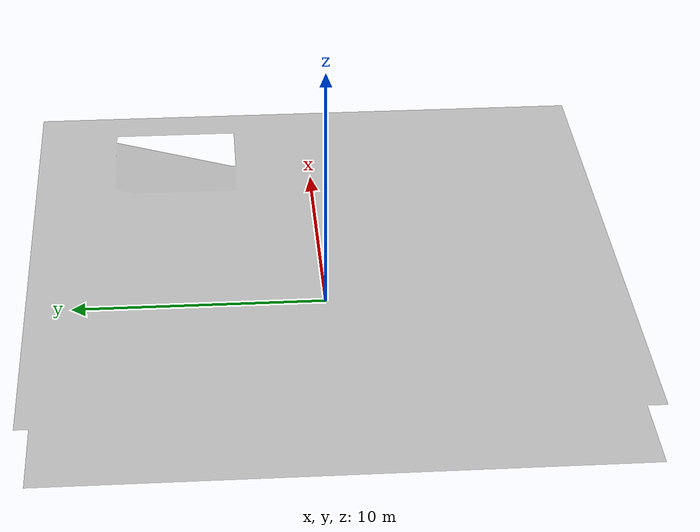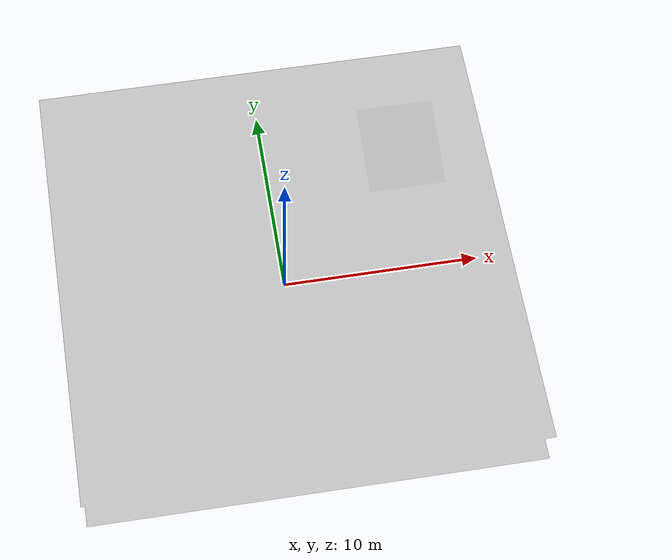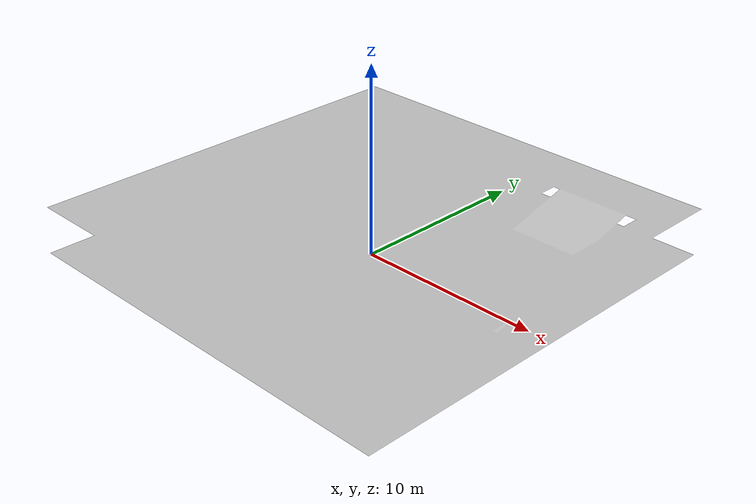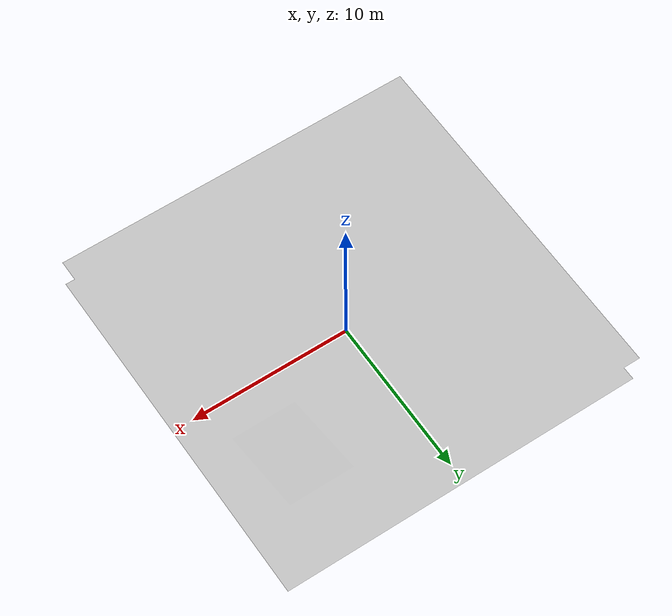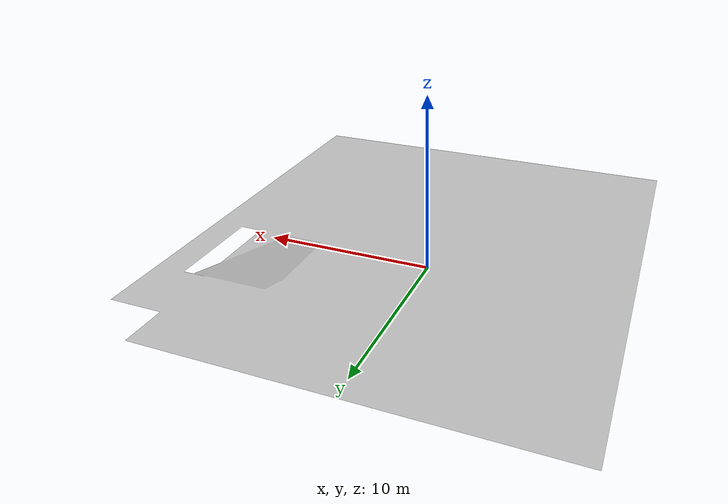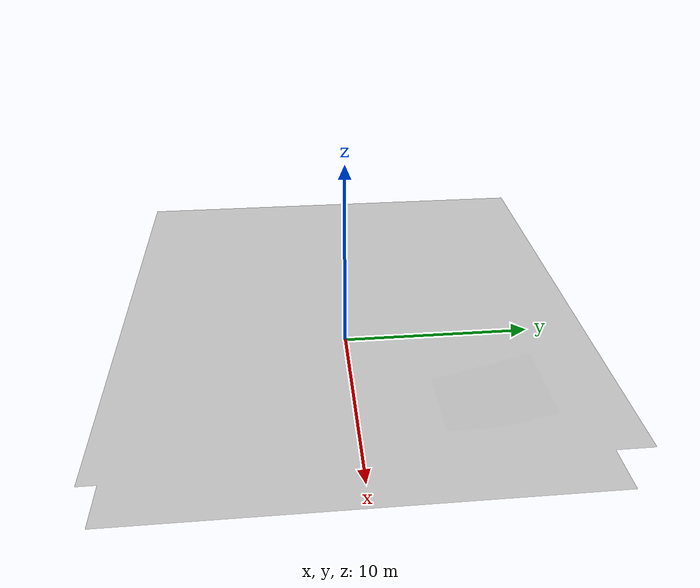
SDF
<?xml version='1.0' encoding='ASCII'?>
<sdf version='1.7'>
  <world name='simple_multi_floor'>
    <physics type="ode">
      <max_step_size>0.003</max_step_size>
      <real_time_factor>1.0</real_time_factor>
    </physics>
    <plugin name='ignition::gazebo::systems::Physics'        filename='libignition-gazebo-physics-system.so'/>
    <plugin name='ignition::gazebo::systems::UserCommands'  filename='libignition-gazebo-user-commands-system.so'/>
    <plugin name='ignition::gazebo::systems::SceneBroadcaster' filename='libignition-gazebo-scene-broadcaster-system.so'/>
    <plugin name='ignition::gazebo::systems::Sensors'       filename='libignition-gazebo-sensors-system.so'>
      <render_engine>ogre2</render_engine>
    </plugin>
    <plugin name='ignition::gazebo::systems::Imu'    filename='libignition-gazebo-imu-system.so'/>
    <plugin name='ignition::gazebo::systems::NavSat' filename='libignition-gazebo-navsat-system.so'/>

    <scene>
      <ambient>1 1 1 1</ambient>
      <background>0.3 0.7 0.9 1</background>
      <shadows>0</shadows>
      <grid>false</grid>
    </scene>

    <light type='directional' name='sun'>
      <cast_shadows>false</cast_shadows>
      <pose>0 0 10 0 0 0</pose>
      <diffuse>1 1 1 1</diffuse>
      <specular>0.2 0.2 0.2 1</specular>
      <direction>0.1 0.1 -1</direction>
    </light>

    <model name='simple_multi_floor'>
      <static>true</static>
      <link name='link'>
        <collision name='collision'>
          <geometry>
            <mesh>
              <uri>file:///home/jo/clearpath_ws/clearpath/worlds/meshes/floor.dae</uri>
            </mesh>
          </geometry>
        </collision>
        <visual name='visual'>
          <geometry>
            <mesh>
              <uri>file:///home/jo/clearpath_ws/clearpath/worlds/meshes/floor.dae</uri>
            </mesh>
          </geometry>
        </visual>
      </link>
      <pose>0 0 0 0 0 0</pose>
    </model>

  </world>
</sdf>
